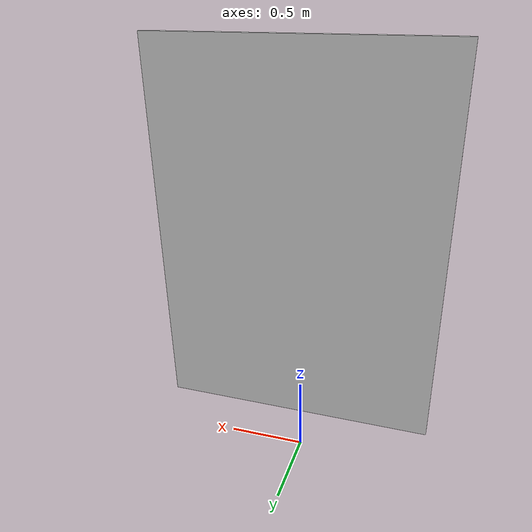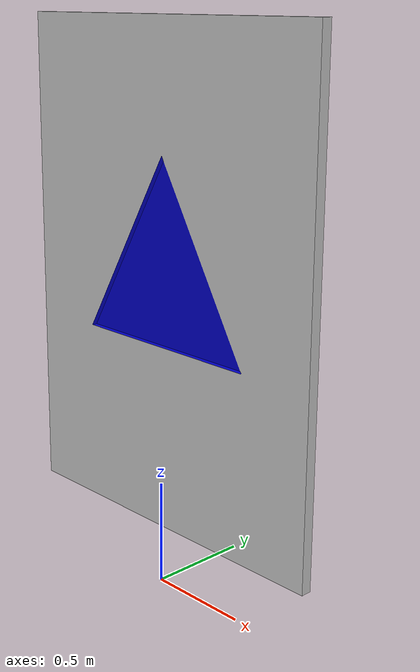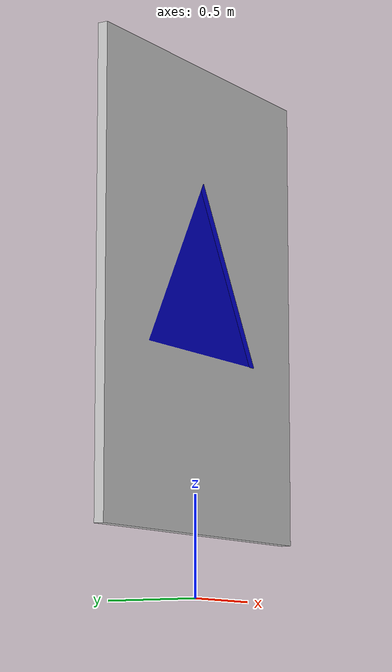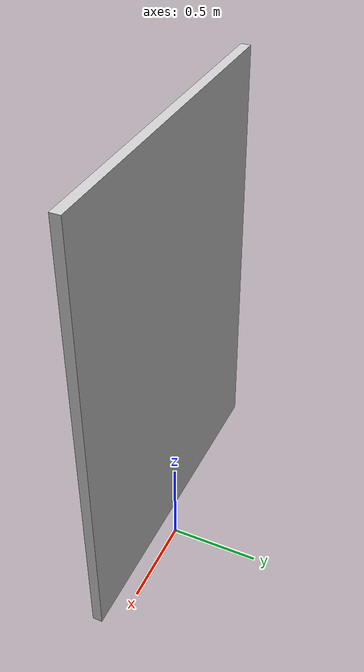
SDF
<?xml version="1.0"?>
<sdf version="1.5">
  <model name="blue_triangle">
    <static>true</static>
    <pose>0 0 0.3025 0 0 3.14159</pose>
    <link name="base_link">
      <visual name="visual">
        <geometry>
           <mesh>
            <uri>file://identify_symbols_and_dock/blue_triangle.dae</uri>
          </mesh>
        </geometry>
      </visual>
      <collision name="collision">
        <geometry>
           <mesh>
            <uri>file://identify_symbols_and_dock/blue_triangle.dae</uri>
          </mesh>
        </geometry>
      </collision>
    </link>
  </model>
</sdf>
